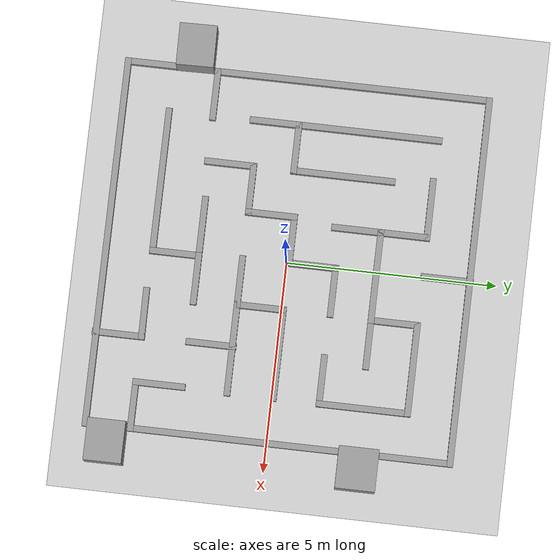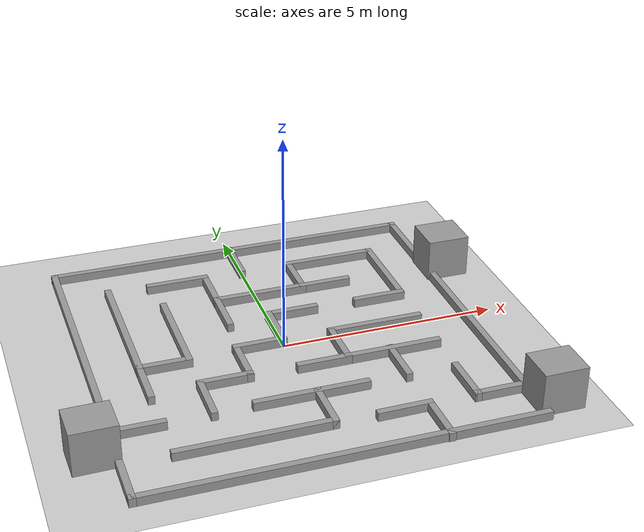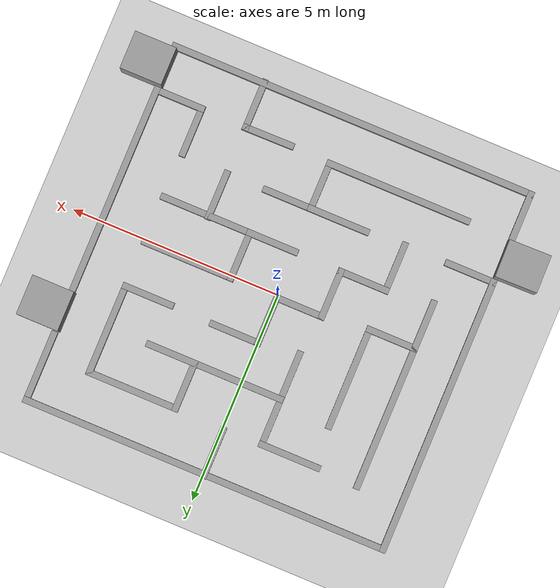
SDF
<sdf version="1.7">
 <world name="default">
  <light name="sun" type="directional">
   <pose>0 0 10 0 -0 0</pose>
   <diffuse>0.8 0.8 0.8 1</diffuse>
   <specular>0.2 0.2 0.2 1</specular>
   <attenuation>
    <range>1000</range>
    <constant>0.9</constant>
    <linear>0.01</linear>
    <quadratic>0.001</quadratic>
   </attenuation>
   <direction>-0.5 0.1 -0.9</direction>
   <spot><inner_angle>0</inner_angle><outer_angle>0</outer_angle><falloff>0</falloff></spot>
  </light>
  <model name="ground_plane">
   <static>1</static>
   <link name="link">
    <collision name="collision">
     <geometry><plane><normal>0 0 1</normal><size>100 100</size></plane></geometry>
     <surface><friction><ode><mu>100</mu><mu2>50</mu2></ode></friction></surface>
    </collision>
    <visual name="visual">
     <cast_shadows>0</cast_shadows>
     <geometry><plane><normal>0 0 1</normal><size>100 100</size></plane></geometry>
     <material>
      <script><uri>file://media/materials/scripts/gazebo.material</uri><name>Gazebo/Grey</name></script>
     </material>
    </visual>
   </link>
  </model>
  <gravity>0 0 -9.8</gravity>
  <magnetic_field>6e-06 2.3e-05 -4.2e-05</magnetic_field>
  <atmosphere type="adiabatic"/>
  <physics type="ode">
   <max_step_size>0.001</max_step_size>
   <real_time_factor>1</real_time_factor>
   <real_time_update_rate>1000</real_time_update_rate>
  </physics>
  <scene><ambient>0.4 0.4 0.4 1</ambient><background>0.7 0.7 0.7 1</background><shadows>1</shadows></scene>
  <audio><device>default</device></audio>
  <spherical_coordinates>
   <surface_model>EARTH_WGS84</surface_model>
   <latitude_deg>0</latitude_deg>
   <longitude_deg>0</longitude_deg>
   <elevation>0</elevation>
   <heading_deg>0</heading_deg>
  </spherical_coordinates>
  <model name="maze_thin">
   <pose>-0.031098 0.031 0 0 -0 0</pose>
   <link name="Wall_0">
    <collision name="Wall_0_Collision">
     <geometry><box><size>8.834 0.15 0.2</size></box></geometry>
     <pose>0 0 0.1 0 -0 0</pose>
    </collision>
    <visual name="Wall_0_Visual">
     <pose>0 0 0.1 0 -0 0</pose>
     <geometry><box><size>8.834 0.15 0.2</size></box></geometry>
     <material>
      <script><uri>file://media/materials/scripts/gazebo.material</uri><name>Gazebo/Grey</name></script>
      <ambient>1 1 1 1</ambient>
     </material>
     <meta><layer>0</layer></meta>
    </visual>
    <pose>9.8e-05 4.325 0 0 -0 0</pose>
   </link>
   <link name="Wall_1">
    <collision name="Wall_1_Collision">
     <geometry><box><size>1.75 0.15 0.2</size></box></geometry>
     <pose>0 0 0.1 0 -0 0</pose>
    </collision>
    <visual name="Wall_1_Visual">
     <pose>0 0 0.1 0 -0 0</pose>
     <geometry><box><size>1.75 0.15 0.2</size></box></geometry>
     <material>
      <script><uri>file://media/materials/scripts/gazebo.material</uri><name>Gazebo/Grey</name></script>
      <ambient>1 1 1 1</ambient>
     </material>
     <meta><layer>0</layer></meta>
    </visual>
    <pose>4.3421 3.525 0 0 -0 -1.5708</pose>
   </link>
   <link name="Wall_11">
    <collision name="Wall_11_Collision">
     <geometry><box><size>1.25 0.15 0.2</size></box></geometry>
     <pose>0 0 0.1 0 -0 0</pose>
    </collision>
    <visual name="Wall_11_Visual">
     <pose>0 0 0.1 0 -0 0</pose>
     <geometry><box><size>1.25 0.15 0.2</size></box></geometry>
     <material>
      <script><uri>file://media/materials/scripts/gazebo.material</uri><name>Gazebo/Grey</name></script>
      <ambient>1 1 1 1</ambient>
     </material>
     <meta><layer>0</layer></meta>
    </visual>
    <pose>-0.924902 1.556 0 0 -0 -1.5708</pose>
   </link>
   <link name="Wall_13">
    <collision name="Wall_13_Collision">
     <geometry><box><size>1.25 0.15 0.2</size></box></geometry>
     <pose>0 0 0.1 0 -0 0</pose>
    </collision>
    <visual name="Wall_13_Visual">
     <pose>0 0 0.1 0 -0 0</pose>
     <geometry><box><size>1.25 0.15 0.2</size></box></geometry>
     <material>
      <script><uri>file://media/materials/scripts/gazebo.material</uri><name>Gazebo/Grey</name></script>
      <ambient>1 1 1 1</ambient>
     </material>
     <meta><layer>0</layer></meta>
    </visual>
    <pose>1.7251 2.106 0 0 -0 0</pose>
   </link>
   <link name="Wall_15">
    <collision name="Wall_15_Collision">
     <geometry><box><size>1.25 0.15 0.2</size></box></geometry>
     <pose>0 0 0.1 0 -0 0</pose>
    </collision>
    <visual name="Wall_15_Visual">
     <pose>0 0 0.1 0 -0 0</pose>
     <geometry><box><size>1.25 0.15 0.2</size></box></geometry>
     <material>
      <script><uri>file://media/materials/scripts/gazebo.material</uri><name>Gazebo/Grey</name></script>
      <ambient>1 1 1 1</ambient>
     </material>
     <meta><layer>0</layer></meta>
    </visual>
    <pose>-3.7749 -2.166 0 0 -0 3.14159</pose>
   </link>
   <link name="Wall_16">
    <collision name="Wall_16_Collision">
     <geometry><box><size>6.64047 0.15 0.2</size></box></geometry>
     <pose>0 0 0.1 0 -0 0</pose>
    </collision>
    <visual name="Wall_16_Visual">
     <pose>0 0 0.1 0 -0 0</pose>
     <geometry><box><size>6.64047 0.15 0.2</size></box></geometry>
     <material>
      <script><uri>file://media/materials/scripts/gazebo.material</uri><name>Gazebo/Grey</name></script>
      <ambient>1 1 1 1</ambient>
     </material>
     <meta><layer>0</layer></meta>
    </visual>
    <pose>-4.3334 1.0795 0 0 -0 1.57342</pose>
   </link>
   <link name="Wall_18">
    <collision name="Wall_18_Collision">
     <geometry><box><size>1.25 0.15 0.2</size></box></geometry>
     <pose>0 0 0.1 0 -0 0</pose>
    </collision>
    <visual name="Wall_18_Visual">
     <pose>0 0 0.1 0 -0 0</pose>
     <geometry><box><size>1.25 0.15 0.2</size></box></geometry>
     <material>
      <script><uri>file://media/materials/scripts/gazebo.material</uri><name>Gazebo/Grey</name></script>
      <ambient>1 1 1 1</ambient>
     </material>
     <meta><layer>0</layer></meta>
    </visual>
    <pose>-2.1629 -1.616 0 0 -0 1.5708</pose>
   </link>
   <link name="Wall_19">
    <collision name="Wall_19_Collision">
     <geometry><box><size>1.25 0.15 0.2</size></box></geometry>
     <pose>0 0 0.1 0 -0 0</pose>
    </collision>
    <visual name="Wall_19_Visual">
     <pose>0 0 0.1 0 -0 0</pose>
     <geometry><box><size>1.25 0.15 0.2</size></box></geometry>
     <material>
      <script><uri>file://media/materials/scripts/gazebo.material</uri><name>Gazebo/Grey</name></script>
      <ambient>1 1 1 1</ambient>
     </material>
     <meta><layer>0</layer></meta>
    </visual>
    <pose>-1.6129 -1.066 0 0 -0 0</pose>
   </link>
   <link name="Wall_20">
    <collision name="Wall_20_Collision">
     <geometry><box><size>1.25 0.15 0.2</size></box></geometry>
     <pose>0 0 0.1 0 -0 0</pose>
    </collision>
    <visual name="Wall_20_Visual">
     <pose>0 0 0.1 0 -0 0</pose>
     <geometry><box><size>1.25 0.15 0.2</size></box></geometry>
     <material>
      <script><uri>file://media/materials/scripts/gazebo.material</uri><name>Gazebo/Grey</name></script>
      <ambient>1 1 1 1</ambient>
     </material>
     <meta><layer>0</layer></meta>
    </visual>
    <pose>-1.0629 -0.516 0 0 -0 1.5708</pose>
   </link>
   <link name="Wall_21">
    <collision name="Wall_21_Collision">
     <geometry><box><size>1.25 0.15 0.2</size></box></geometry>
     <pose>0 0 0.1 0 -0 0</pose>
    </collision>
    <visual name="Wall_21_Visual">
     <pose>0 0 0.1 0 -0 0</pose>
     <geometry><box><size>1.25 0.15 0.2</size></box></geometry>
     <material>
      <script><uri>file://media/materials/scripts/gazebo.material</uri><name>Gazebo/Grey</name></script>
      <ambient>1 1 1 1</ambient>
     </material>
     <meta><layer>0</layer></meta>
    </visual>
    <pose>-0.512902 0.034 0 0 -0 0</pose>
   </link>
   <link name="Wall_22">
    <collision name="Wall_22_Collision">
     <geometry><box><size>1.25 0.15 0.2</size></box></geometry>
     <pose>0 0 0.1 0 -0 0</pose>
    </collision>
    <visual name="Wall_22_Visual">
     <pose>0 0 0.1 0 -0 0</pose>
     <geometry><box><size>1.25 0.15 0.2</size></box></geometry>
     <material>
      <script><uri>file://media/materials/scripts/gazebo.material</uri><name>Gazebo/Grey</name></script>
      <ambient>1 1 1 1</ambient>
     </material>
     <meta><layer>0</layer></meta>
    </visual>
    <pose>0.037098 0.584 0 0 -0 1.5708</pose>
   </link>
   <link name="Wall_23">
    <collision name="Wall_23_Collision">
     <geometry><box><size>1.25 0.15 0.2</size></box></geometry>
     <pose>0 0 0.1 0 -0 0</pose>
    </collision>
    <visual name="Wall_23_Visual">
     <pose>0 0 0.1 0 -0 0</pose>
     <geometry><box><size>1.25 0.15 0.2</size></box></geometry>
     <material>
      <script><uri>file://media/materials/scripts/gazebo.material</uri><name>Gazebo/Grey</name></script>
      <ambient>1 1 1 1</ambient>
     </material>
     <meta><layer>0</layer></meta>
    </visual>
    <pose>0.587098 1.134 0 0 -0 0</pose>
   </link>
   <link name="Wall_25">
    <collision name="Wall_25_Collision">
     <geometry><box><size>2.25 0.15 0.2</size></box></geometry>
     <pose>0 0 0.1 0 -0 0</pose>
    </collision>
    <visual name="Wall_25_Visual">
     <pose>0 0 0.1 0 -0 0</pose>
     <geometry><box><size>2.25 0.15 0.2</size></box></geometry>
     <material>
      <script><uri>file://media/materials/scripts/gazebo.material</uri><name>Gazebo/Grey</name></script>
      <ambient>1 1 1 1</ambient>
     </material>
     <meta><layer>0</layer></meta>
    </visual>
    <pose>2.2091 0.02 0 0 -0 3.14159</pose>
   </link>
   <link name="Wall_26">
    <collision name="Wall_26_Collision">
     <geometry><box><size>1.25 0.15 0.2</size></box></geometry>
     <pose>0 0 0.1 0 -0 0</pose>
    </collision>
    <visual name="Wall_26_Visual">
     <pose>0 0 0.1 0 -0 0</pose>
     <geometry><box><size>1.25 0.15 0.2</size></box></geometry>
     <material>
      <script><uri>file://media/materials/scripts/gazebo.material</uri><name>Gazebo/Grey</name></script>
      <ambient>1 1 1 1</ambient>
     </material>
     <meta><layer>0</layer></meta>
    </visual>
    <pose>1.1591 -0.53 0 0 -0 -1.5708</pose>
   </link>
   <link name="Wall_27">
    <collision name="Wall_27_Collision">
     <geometry><box><size>1.25 0.15 0.2</size></box></geometry>
     <pose>0 0 0.1 0 -0 0</pose>
    </collision>
    <visual name="Wall_27_Visual">
     <pose>0 0 0.1 0 -0 0</pose>
     <geometry><box><size>1.25 0.15 0.2</size></box></geometry>
     <material>
      <script><uri>file://media/materials/scripts/gazebo.material</uri><name>Gazebo/Grey</name></script>
      <ambient>1 1 1 1</ambient>
     </material>
     <meta><layer>0</layer></meta>
    </visual>
    <pose>0.609098 -1.08 0 0 -0 3.14159</pose>
   </link>
   <link name="Wall_29">
    <collision name="Wall_29_Collision">
     <geometry><box><size>2.25 0.15 0.2</size></box></geometry>
     <pose>0 0 0.1 0 -0 0</pose>
    </collision>
    <visual name="Wall_29_Visual">
     <pose>0 0 0.1 0 -0 0</pose>
     <geometry><box><size>2.25 0.15 0.2</size></box></geometry>
     <material>
      <script><uri>file://media/materials/scripts/gazebo.material</uri><name>Gazebo/Grey</name></script>
      <ambient>1 1 1 1</ambient>
     </material>
     <meta><layer>0</layer></meta>
    </visual>
    <pose>2.2091 -1.08 0 0 -0 0</pose>
   </link>
   <link name="Wall_3">
    <collision name="Wall_3_Collision">
     <geometry><box><size>1.25 0.15 0.2</size></box></geometry>
     <pose>0 0 0.1 0 -0 0</pose>
    </collision>
    <visual name="Wall_3_Visual">
     <pose>0 0 0.1 0 -0 0</pose>
     <geometry><box><size>1.25 0.15 0.2</size></box></geometry>
     <material>
      <script><uri>file://media/materials/scripts/gazebo.material</uri><name>Gazebo/Grey</name></script>
      <ambient>1 1 1 1</ambient>
     </material>
     <meta><layer>0</layer></meta>
    </visual>
    <pose>2.7251 1.106 0 0 -0 0</pose>
   </link>
   <link name="Wall_31">
    <collision name="Wall_31_Collision">
     <geometry><box><size>1.199 0.15 0.2</size></box></geometry>
     <pose>0 0 0.1 0 -0 0</pose>
    </collision>
    <visual name="Wall_31_Visual">
     <pose>0 0 0.1 0 -0 0</pose>
     <geometry><box><size>1.199 0.15 0.2</size></box></geometry>
     <material>
      <script><uri>file://media/materials/scripts/gazebo.material</uri><name>Gazebo/Grey</name></script>
      <ambient>1 1 1 1</ambient>
     </material>
     <meta><layer>0</layer></meta>
    </visual>
    <pose>2.1571 -1.5875 0 0 -0 -1.5708</pose>
   </link>
   <link name="Wall_33">
    <collision name="Wall_33_Collision">
     <geometry><box><size>1.25 0.15 0.2</size></box></geometry>
     <pose>0 0 0.1 0 -0 0</pose>
    </collision>
    <visual name="Wall_33_Visual">
     <pose>0 0 0.1 0 -0 0</pose>
     <geometry><box><size>1.25 0.15 0.2</size></box></geometry>
     <material>
      <script><uri>file://media/materials/scripts/gazebo.material</uri><name>Gazebo/Grey</name></script>
      <ambient>1 1 1 1</ambient>
     </material>
     <meta><layer>0</layer></meta>
    </visual>
    <pose>3.2421 -2.699 0 0 -0 -1.5708</pose>
   </link>
   <link name="Wall_34">
    <collision name="Wall_34_Collision">
     <geometry><box><size>1.25 0.15 0.2</size></box></geometry>
     <pose>0 0 0.1 0 -0 0</pose>
    </collision>
    <visual name="Wall_34_Visual">
     <pose>0 0 0.1 0 -0 0</pose>
     <geometry><box><size>1.25 0.15 0.2</size></box></geometry>
     <material>
      <script><uri>file://media/materials/scripts/gazebo.material</uri><name>Gazebo/Grey</name></script>
      <ambient>1 1 1 1</ambient>
     </material>
     <meta><layer>0</layer></meta>
    </visual>
    <pose>3.7921 -3.249 0 0 -0 0</pose>
   </link>
   <link name="Wall_35">
    <collision name="Wall_35_Collision">
     <geometry><box><size>5 0.15 0.2</size></box></geometry>
     <pose>0 0 0.1 0 -0 0</pose>
    </collision>
    <visual name="Wall_35_Visual">
     <pose>0 0 0.1 0 -0 0</pose>
     <geometry><box><size>5 0.15 0.2</size></box></geometry>
     <material>
      <script><uri>file://media/materials/scripts/gazebo.material</uri><name>Gazebo/Grey</name></script>
      <ambient>1 1 1 1</ambient>
     </material>
     <meta><layer>0</layer></meta>
    </visual>
    <pose>4.3421 -0.824 0 0 -0 1.5708</pose>
   </link>
   <link name="Wall_37">
    <collision name="Wall_37_Collision">
     <geometry><box><size>8.834 0.15 0.2</size></box></geometry>
     <pose>0 0 0.1 0 -0 0</pose>
    </collision>
    <visual name="Wall_37_Visual">
     <pose>0 0 0.1 0 -0 0</pose>
     <geometry><box><size>8.834 0.15 0.2</size></box></geometry>
     <material>
      <script><uri>file://media/materials/scripts/gazebo.material</uri><name>Gazebo/Grey</name></script>
      <ambient>1 1 1 1</ambient>
     </material>
     <meta><layer>0</layer></meta>
    </visual>
    <pose>9.8e-05 -4.318 0 0 -0 3.14159</pose>
   </link>
   <link name="Wall_38">
    <collision name="Wall_38_Collision">
     <geometry><box><size>1.25 0.15 0.2</size></box></geometry>
     <pose>0 0 0.1 0 -0 0</pose>
    </collision>
    <visual name="Wall_38_Visual">
     <pose>0 0 0.1 0 -0 0</pose>
     <geometry><box><size>1.25 0.15 0.2</size></box></geometry>
     <material>
      <script><uri>file://media/materials/scripts/gazebo.material</uri><name>Gazebo/Grey</name></script>
      <ambient>1 1 1 1</ambient>
     </material>
     <meta><layer>0</layer></meta>
    </visual>
    <pose>-4.3419 -3.768 0 0 -0 1.5708</pose>
   </link>
   <link name="Wall_4">
    <collision name="Wall_4_Collision">
     <geometry><box><size>2.25 0.15 0.2</size></box></geometry>
     <pose>0 0 0.1 0 -0 0</pose>
    </collision>
    <visual name="Wall_4_Visual">
     <pose>0 0 0.1 0 -0 0</pose>
     <geometry><box><size>2.25 0.15 0.2</size></box></geometry>
     <material>
      <script><uri>file://media/materials/scripts/gazebo.material</uri><name>Gazebo/Grey</name></script>
      <ambient>1 1 1 1</ambient>
     </material>
     <meta><layer>0</layer></meta>
    </visual>
    <pose>3.2751 2.156 0 0 -0 1.5708</pose>
   </link>
   <link name="Wall_40">
    <collision name="Wall_40_Collision">
     <geometry><box><size>3.5 0.15 0.2</size></box></geometry>
     <pose>0 0 0.1 0 -0 0</pose>
    </collision>
    <visual name="Wall_40_Visual">
     <pose>0 0 0.1 0 -0 0</pose>
     <geometry><box><size>3.5 0.15 0.2</size></box></geometry>
     <material>
      <script><uri>file://media/materials/scripts/gazebo.material</uri><name>Gazebo/Grey</name></script>
      <ambient>1 1 1 1</ambient>
     </material>
     <meta><layer>0</layer></meta>
    </visual>
    <pose>-1.5719 -3.216 0 0 -0 0</pose>
   </link>
   <link name="Wall_41">
    <collision name="Wall_41_Collision">
     <geometry><box><size>1.25 0.15 0.2</size></box></geometry>
     <pose>0 0 0.1 0 -0 0</pose>
    </collision>
    <visual name="Wall_41_Visual">
     <pose>0 0 0.1 0 -0 0</pose>
     <geometry><box><size>1.25 0.15 0.2</size></box></geometry>
     <material>
      <script><uri>file://media/materials/scripts/gazebo.material</uri><name>Gazebo/Grey</name></script>
      <ambient>1 1 1 1</ambient>
     </material>
     <meta><layer>0</layer></meta>
    </visual>
    <pose>0.103098 -2.666 0 0 -0 1.5708</pose>
   </link>
   <link name="Wall_42">
    <collision name="Wall_42_Collision">
     <geometry><box><size>1.25 0.15 0.2</size></box></geometry>
     <pose>0 0 0.1 0 -0 0</pose>
    </collision>
    <visual name="Wall_42_Visual">
     <pose>0 0 0.1 0 -0 0</pose>
     <geometry><box><size>1.25 0.15 0.2</size></box></geometry>
     <material>
      <script><uri>file://media/materials/scripts/gazebo.material</uri><name>Gazebo/Grey</name></script>
      <ambient>1 1 1 1</ambient>
     </material>
     <meta><layer>0</layer></meta>
    </visual>
    <pose>0.653098 -2.116 0 0 -0 0</pose>
   </link>
   <link name="Wall_44">
    <collision name="Wall_44_Collision">
     <geometry><box><size>1.5 0.15 0.2</size></box></geometry>
     <pose>0 0 0.1 0 -0 0</pose>
    </collision>
    <visual name="Wall_44_Visual">
     <pose>0 0 0.1 0 -0 0</pose>
     <geometry><box><size>1.5 0.15 0.2</size></box></geometry>
     <material>
      <script><uri>file://media/materials/scripts/gazebo.material</uri><name>Gazebo/Grey</name></script>
      <ambient>1 1 1 1</ambient>
     </material>
     <meta><layer>0</layer></meta>
    </visual>
    <pose>-0.571902 -2.116 0 0 -0 3.14159</pose>
   </link>
   <link name="Wall_46">
    <collision name="Wall_46_Collision">
     <geometry><box><size>2.5 0.15 0.2</size></box></geometry>
     <pose>0 0 0.1 0 -0 0</pose>
    </collision>
    <visual name="Wall_46_Visual">
     <pose>0 0 0.1 0 -0 0</pose>
     <geometry><box><size>2.5 0.15 0.2</size></box></geometry>
     <material>
      <script><uri>file://media/materials/scripts/gazebo.material</uri><name>Gazebo/Grey</name></script>
      <ambient>1 1 1 1</ambient>
     </material>
     <meta><layer>0</layer></meta>
    </visual>
    <pose>-2.1629 1.066 0 0 -0 -1.5708</pose>
   </link>
   <link name="Wall_47">
    <collision name="Wall_47_Collision">
     <geometry><box><size>1.25 0.15 0.2</size></box></geometry>
     <pose>0 0 0.1 0 -0 0</pose>
    </collision>
    <visual name="Wall_47_Visual">
     <pose>0 0 0.1 0 -0 0</pose>
     <geometry><box><size>1.25 0.15 0.2</size></box></geometry>
     <material>
      <script><uri>file://media/materials/scripts/gazebo.material</uri><name>Gazebo/Grey</name></script>
      <ambient>1 1 1 1</ambient>
     </material>
     <meta><layer>0</layer></meta>
    </visual>
    <pose>-2.7129 -0.109 0 0 -0 3.14159</pose>
   </link>
   <link name="Wall_48">
    <collision name="Wall_48_Collision">
     <geometry><box><size>3.5 0.15 0.2</size></box></geometry>
     <pose>0 0 0.1 0 -0 0</pose>
    </collision>
    <visual name="Wall_48_Visual">
     <pose>0 0 0.1 0 -0 0</pose>
     <geometry><box><size>3.5 0.15 0.2</size></box></geometry>
     <material>
      <script><uri>file://media/materials/scripts/gazebo.material</uri><name>Gazebo/Grey</name></script>
      <ambient>1 1 1 1</ambient>
     </material>
     <meta><layer>0</layer></meta>
    </visual>
    <pose>-3.2629 1.566 0 0 -0 1.5708</pose>
   </link>
   <link name="Wall_5">
    <collision name="Wall_5_Collision">
     <geometry><box><size>2.25 0.15 0.2</size></box></geometry>
     <pose>0 0 0.1 0 -0 0</pose>
    </collision>
    <visual name="Wall_5_Visual">
     <pose>0 0 0.1 0 -0 0</pose>
     <geometry><box><size>2.25 0.15 0.2</size></box></geometry>
     <material>
      <script><uri>file://media/materials/scripts/gazebo.material</uri><name>Gazebo/Grey</name></script>
      <ambient>1 1 1 1</ambient>
     </material>
     <meta><layer>0</layer></meta>
    </visual>
    <pose>2.2251 3.206 0 0 -0 3.14159</pose>
   </link>
   <link name="Wall_50">
    <collision name="Wall_50_Collision">
     <geometry><box><size>1.25 0.15 0.2</size></box></geometry>
     <pose>0 0 0.1 0 -0 0</pose>
    </collision>
    <visual name="Wall_50_Visual">
     <pose>0 0 0.1 0 -0 0</pose>
     <geometry><box><size>1.25 0.15 0.2</size></box></geometry>
     <material>
      <script><uri>file://media/materials/scripts/gazebo.material</uri><name>Gazebo/Grey</name></script>
      <ambient>1 1 1 1</ambient>
     </material>
     <meta><layer>0</layer></meta>
    </visual>
    <pose>-3.2629 -0.659 0 0 -0 -1.5708</pose>
   </link>
   <link name="Wall_52">
    <collision name="Wall_52_Collision">
     <geometry><box><size>1.25 0.15 0.2</size></box></geometry>
     <pose>0 0 0.1 0 -0 0</pose>
    </collision>
    <visual name="Wall_52_Visual">
     <pose>0 0 0.1 0 -0 0</pose>
     <geometry><box><size>1.25 0.15 0.2</size></box></geometry>
     <material>
      <script><uri>file://media/materials/scripts/gazebo.material</uri><name>Gazebo/Grey</name></script>
      <ambient>1 1 1 1</ambient>
     </material>
     <meta><layer>0</layer></meta>
    </visual>
    <pose>0.006098 3.789 0 0 -0 -1.5708</pose>
   </link>
   <link name="Wall_54">
    <collision name="Wall_54_Collision">
     <geometry><box><size>1.25 0.15 0.2</size></box></geometry>
     <pose>0 0 0.1 0 -0 0</pose>
    </collision>
    <visual name="Wall_54_Visual">
     <pose>0 0 0.1 0 -0 0</pose>
     <geometry><box><size>1.25 0.15 0.2</size></box></geometry>
     <material>
      <script><uri>file://media/materials/scripts/gazebo.material</uri><name>Gazebo/Grey</name></script>
      <ambient>1 1 1 1</ambient>
     </material>
     <meta><layer>0</layer></meta>
    </visual>
    <pose>1.6141 -3.245 0 0 -0 0.010909</pose>
   </link>
   <link name="Wall_55">
    <collision name="Wall_55_Collision">
     <geometry><box><size>1.25 0.15 0.2</size></box></geometry>
     <pose>0 0 0.1 0 -0 0</pose>
    </collision>
    <visual name="Wall_55_Visual">
     <pose>0 0 0.1 0 -0 0</pose>
     <geometry><box><size>1.25 0.15 0.2</size></box></geometry>
     <material>
      <script><uri>file://media/materials/scripts/gazebo.material</uri><name>Gazebo/Grey</name></script>
      <ambient>1 1 1 1</ambient>
     </material>
     <meta><layer>0</layer></meta>
    </visual>
    <pose>2.1641 -3.789 0 0 -0 -1.5708</pose>
   </link>
   <link name="Wall_6">
    <collision name="Wall_6_Collision">
     <geometry><box><size>1.25 0.15 0.2</size></box></geometry>
     <pose>0 0 0.1 0 -0 0</pose>
    </collision>
    <visual name="Wall_6_Visual">
     <pose>0 0 0.1 0 -0 0</pose>
     <geometry><box><size>1.25 0.15 0.2</size></box></geometry>
     <material>
      <script><uri>file://media/materials/scripts/gazebo.material</uri><name>Gazebo/Grey</name></script>
      <ambient>1 1 1 1</ambient>
     </material>
     <meta><layer>0</layer></meta>
    </visual>
    <pose>1.1751 2.656 0 0 -0 -1.5708</pose>
   </link>
   <link name="Wall_7">
    <collision name="Wall_7_Collision">
     <geometry><box><size>2.25 0.15 0.2</size></box></geometry>
     <pose>0 0 0.1 0 -0 0</pose>
    </collision>
    <visual name="Wall_7_Visual">
     <pose>0 0 0.1 0 -0 0</pose>
     <geometry><box><size>2.25 0.15 0.2</size></box></geometry>
     <material>
      <script><uri>file://media/materials/scripts/gazebo.material</uri><name>Gazebo/Grey</name></script>
      <ambient>1 1 1 1</ambient>
     </material>
     <meta><layer>0</layer></meta>
    </visual>
    <pose>0.125098 2.106 0 0 -0 3.14159</pose>
   </link>
   <link name="Wall_8">
    <collision name="Wall_8_Collision">
     <geometry><box><size>1.25 0.15 0.2</size></box></geometry>
     <pose>0 0 0.1 0 -0 0</pose>
    </collision>
    <visual name="Wall_8_Visual">
     <pose>0 0 0.1 0 -0 0</pose>
     <geometry><box><size>1.25 0.15 0.2</size></box></geometry>
     <material>
      <script><uri>file://media/materials/scripts/gazebo.material</uri><name>Gazebo/Grey</name></script>
      <ambient>1 1 1 1</ambient>
     </material>
     <meta><layer>0</layer></meta>
    </visual>
    <pose>-0.924902 2.656 0 0 -0 1.5708</pose>
   </link>
   <link name="Wall_9">
    <collision name="Wall_9_Collision">
     <geometry><box><size>1.5 0.15 0.2</size></box></geometry>
     <pose>0 0 0.1 0 -0 0</pose>
    </collision>
    <visual name="Wall_9_Visual">
     <pose>0 0 0.1 0 -0 0</pose>
     <geometry><box><size>1.5 0.15 0.2</size></box></geometry>
     <material>
      <script><uri>file://media/materials/scripts/gazebo.material</uri><name>Gazebo/Grey</name></script>
      <ambient>1 1 1 1</ambient>
     </material>
     <meta><layer>0</layer></meta>
    </visual>
    <pose>-1.5999 3.206 0 0 -0 3.14159</pose>
   </link>
   <static>1</static>
  </model>
  <model name="unit_box">
   <pose>4.70616 2.18912 0.499995 -0 1e-05 1e-06</pose>
   <link name="link">
    <inertial>
     <mass>1</mass>
     <inertia>
      <ixx>0.166667</ixx>
      <ixy>0</ixy>
      <ixz>0</ixz>
      <iyy>0.166667</iyy>
      <iyz>0</iyz>
      <izz>0.166667</izz>
     </inertia>
    </inertial>
    <collision name="collision"><geometry><box><size>1 0.948408 1</size></box></geometry></collision>
    <visual name="visual">
     <geometry><box><size>1 0.948408 1</size></box></geometry>
     <material>
      <script><name>Gazebo/Grey</name><uri>file://media/materials/scripts/gazebo.material</uri></script>
     </material>
    </visual>
   </link>
  </model>
  <model name="unit_box_0">
   <pose>-4.80322 -2.67179 0.499999 -4e-06 -1e-06 0.017017</pose>
   <link name="link">
    <inertial>
     <mass>1</mass>
     <inertia>
      <ixx>0.166667</ixx>
      <ixy>0</ixy>
      <ixz>0</ixz>
      <iyy>0.166667</iyy>
      <iyz>0</iyz>
      <izz>0.166667</izz>
     </inertia>
    </inertial>
    <collision name="collision"><geometry><box><size>1 0.89179 1</size></box></geometry></collision>
    <visual name="visual">
     <geometry><box><size>1 0.89179 1</size></box></geometry>
     <material>
      <script><name>Gazebo/Grey</name><uri>file://media/materials/scripts/gazebo.material</uri></script>
     </material>
    </visual>
   </link>
  </model>
  <model name="unit_box_clone">
   <pose>4.70684 -3.7434 0.499995 0 -1e-05 0.001599</pose>
   <link name="link">
    <inertial>
     <mass>1</mass>
     <inertia>
      <ixx>0.166667</ixx>
      <ixy>0</ixy>
      <ixz>0</ixz>
      <iyy>0.166667</iyy>
      <iyz>0</iyz>
      <izz>0.166667</izz>
     </inertia>
    </inertial>
    <collision name="collision"><geometry><box><size>1 0.898753 1</size></box></geometry></collision>
    <visual name="visual">
     <geometry><box><size>1 0.898753 1</size></box></geometry>
     <material>
      <script><name>Gazebo/Grey</name><uri>file://media/materials/scripts/gazebo.material</uri></script>
     </material>
    </visual>
   </link>
  </model>
 </world>
</sdf>
